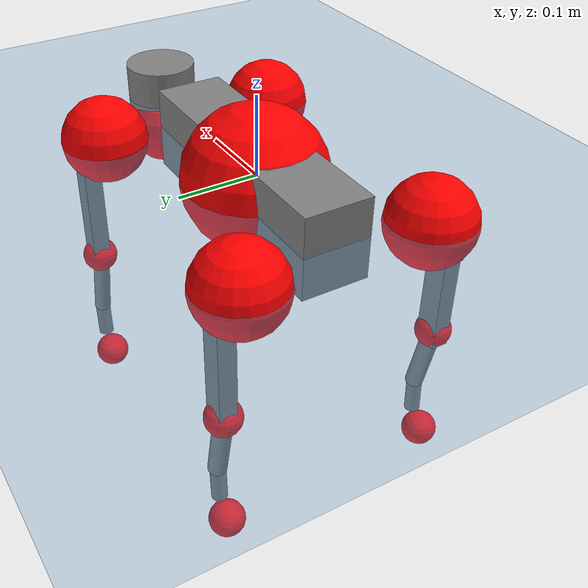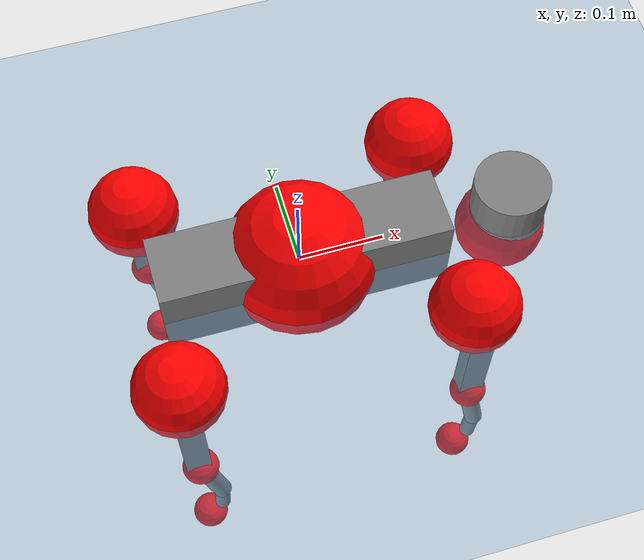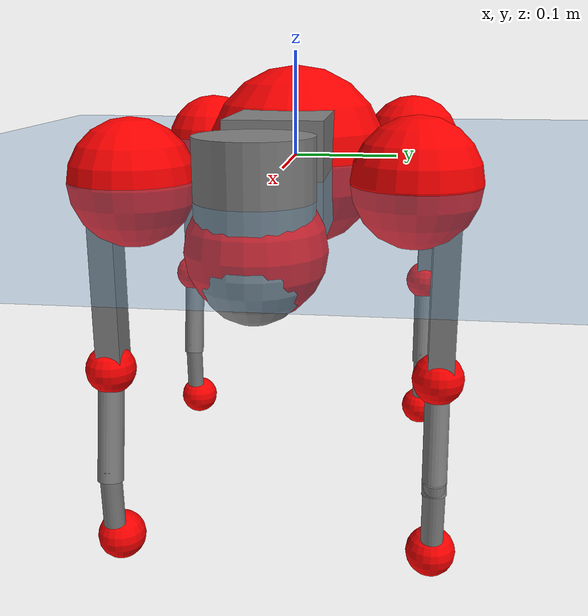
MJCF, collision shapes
<mujoco model="go2">
  <compiler angle="radian" assetdir="assets" balanceinertia="true" inertiafromgeom="false"/>

  <option timestep="0.005" density="1.2" viscosity="2e-05"/>

  <size nkey="1"/>

  <visual>
    <quality shadowsize="8192"/>
    <map shadowclip="0.5"/>
  </visual>

  <default>
    <default class="/">
      <geom contype="0" conaffinity="0" group="1" solref="-1000 -80"/>
      <site size="0.01 0.005 0.005" group="5"/>
      <general forcelimited="true" biastype="affine" gainprm="20" biasprm="0 -20 -0.5"/>
      <default class="go2">
        <joint armature="0.01" damping="0.01" frictionloss="0.2"/>
        <geom condim="1" margin="0.001"/>
        <default class="visual">
          <geom type="mesh" group="2"/>
        </default>
        <default class="collision">
          <geom group="3"/>
          <default class="foot">
            <geom size="0.022 0 0" condim="6" priority="1" friction="0.8 0.02 0.01" solimp="0.015 1 0.022"/>
          </default>
        </default>
        <default class="reward_collision_sphere">
          <geom group="5" rgba="1 0 0 1"/>
        </default>
      </default>
    </default>
  </default>

  <asset>
    <texture type="skybox" colorspace="auto" name="//unnamed_texture_0" builtin="gradient" rgb1="0.95 0.95 0.95" rgb2="0.95 0.95 0.95" width="100" height="600"/>
    <texture type="2d" colorspace="auto" name="texplane" builtin="checker" rgb1="0.345 0.575 0.748" rgb2="0.345 0.575 0.748" markrgb="1 1 1" width="512" height="512"/>
    <material name="MatPlane" class="/" texture="texplane" texuniform="true" texrepeat="2 2" specular="0.9"/>
    <material name="metal" class="/" rgba="0.9 0.95 0.95 1"/>
    <material name="black" class="/" rgba="0 0 0 1"/>
    <material name="white" class="/"/>
    <material name="gray" class="/" rgba="0.671705 0.692426 0.77427 1"/>
    <mesh name="base_0" class="/" file="base_0.obj"/>
    <mesh name="base_1" class="/" file="base_1.obj"/>
    <mesh name="base_2" class="/" file="base_2.obj"/>
    <mesh name="base_3" class="/" file="base_3.obj"/>
    <mesh name="base_4" class="/" file="base_4.obj"/>
    <mesh name="hip_0" class="/" file="hip_0.obj"/>
    <mesh name="hip_1" class="/" file="hip_1.obj"/>
    <mesh name="thigh_0" class="/" file="thigh_0.obj"/>
    <mesh name="thigh_1" class="/" file="thigh_1.obj"/>
    <mesh name="thigh_mirror_0" class="/" file="thigh_mirror_0.obj"/>
    <mesh name="thigh_mirror_1" class="/" file="thigh_mirror_1.obj"/>
    <mesh name="calf_0" class="/" file="calf_0.obj"/>
    <mesh name="calf_1" class="/" file="calf_1.obj"/>
    <mesh name="calf_mirror_0" class="/" file="calf_mirror_0.obj"/>
    <mesh name="calf_mirror_1" class="/" file="calf_mirror_1.obj"/>
    <mesh name="foot" class="/" file="foot.obj"/>
  </asset>

  <worldbody>
    <geom name="floor" class="/" size="100 100 0.125" type="plane" group="0" material="MatPlane"/>
    <light name="toplight_shadow" class="/" pos="0 0 5" dir="0.0990148 0.0990148 -0.990148" type="directional" ambient="0.04 0.04 0.04" diffuse="0.55 0.55 0.55" specular="0.12 0.12 0.12"/>
    <light name="toplight_fill" class="/" pos="0 0 5" dir="0.0990148 0.0990148 -0.990148" type="directional" castshadow="false" ambient="0.04 0.04 0.04" diffuse="0.3 0.3 0.3" specular="0.08 0.08 0.08"/>
    <body name="trunk" childclass="go2" pos="0.000389731 0.00103787 -0.00270559" quat="1 0.00015511 0.000179827 -0.000585087">
      <inertial pos="0.0178131 0.00279575 -0.00379254" quat="0.000114261 0.713215 -0.00232178 0.700941" mass="5.10224" diaginertia="0.0618598 0.10434 0.00779239"/>
      <joint name="//unnamed_joint_0" type="free" armature="0" damping="0" frictionloss="0"/>
      <geom name="//unnamed_geom_1" class="visual" material="black" mesh="base_0"/>
      <geom name="//unnamed_geom_2" class="visual" material="black" mesh="base_1"/>
      <geom name="//unnamed_geom_3" class="visual" material="black" mesh="base_2"/>
      <geom name="//unnamed_geom_4" class="visual" material="white" mesh="base_3"/>
      <geom name="//unnamed_geom_5" class="visual" material="gray" mesh="base_4"/>
      <geom name="trunk_1" class="collision" size="0.168331 0.0418366 0.0510094" type="box"/>
      <geom name="trunk_2" class="collision" size="0.0447451 0.0402706" pos="0.25391 0 0.00786926" type="cylinder"/>
      <geom name="trunk_3" class="collision" size="0.0420604" pos="0.261037 0 -0.0472156"/>
      <geom name="//unnamed_geom_9" class="reward_collision_sphere" size="0.0894902"/>
      <geom name="//unnamed_geom_10" class="reward_collision_sphere" size="0.0536941" pos="0.249456 0 -0.0354117"/>
      <site name="imu" pos="-0.0177644 0.0141416 0.040817" size="0.00894902"/>
      <camera name="track" pos="0 -2.01373 0" quat="0.707107 0.707107 0 0" mode="trackcom"/>
      <camera name="ego_camera" pos="0.277965 0 0.0354117" quat="-0.5 -0.5 0.5 0.5"/>
      <body name="FL_hip" pos="0.169933 0.0465081 0.00320361" quat="0.999999 0.000747402 -0.000809283 -0.000532766">
        <inertial pos="-0.00374791 -0.000390036 0.000226675" quat="0.494119 0.499376 0.508732 0.497657" mass="0.473562" diaginertia="0.000502523 0.000643865 0.000145284"/>
        <joint name="FL_hip_joint" pos="0 0 0" axis="1 -0.000529135 -0.00038084" range="-1.03502 1.06538" armature="0.00893496" damping="0.022725" frictionloss="0.182014"/>
        <geom name="//unnamed_geom_11" class="visual" material="metal" mesh="hip_0"/>
        <geom name="//unnamed_geom_12" class="visual" material="gray" mesh="hip_1"/>
        <geom name="//unnamed_geom_13" class="collision" size="0.0411655 0.017898" pos="0 0.0805493 0" quat="0.707107 0.707107 0 0" type="cylinder"/>
        <geom name="//unnamed_geom_14" class="reward_collision_sphere" size="0.0536941" pos="0 0.0704806 0"/>
        <body name="FL_thigh" pos="0.001666 0.0963564 0.00299789" quat="1 -0.000633131 -0.000120156 -0.000661023">
          <inertial pos="-0.00107238 -0.0250849 -0.0270917" quat="0.829524 0.0844722 -0.0203628 0.55167" mass="0.809596" diaginertia="0.00334415 0.00577638 0.000257093"/>
          <joint name="FL_thigh_joint" pos="0 0 0" axis="-0.000588673 0.99999 0.00449319" stiffness="0.00340118" range="-1.51386 3.50104" armature="0.00789275" damping="0.0123086" frictionloss="0.160136"/>
          <geom name="//unnamed_geom_15" class="visual" material="metal" mesh="thigh_0"/>
          <geom name="//unnamed_geom_16" class="visual" material="gray" mesh="thigh_1"/>
          <geom name="//unnamed_geom_17" class="collision" size="0.095307 0.0109625 0.0152133" pos="0 0 -0.0838076" quat="0.707107 0 0.707107 0" type="box"/>
          <body name="FL_calf" pos="-0.000245149 -0.00144364 -0.169472" quat="0.999999 0.00141592 -0.000122904 -0.000125512">
            <inertial pos="0.00349813 -0.00101789 -0.10809" quat="0.714553 0.0118625 -0.00364033 0.699471" mass="0.172652" diaginertia="0.000808326 0.00157026 1.63988e-05"/>
            <joint name="FL_calf_joint" pos="0 0 0" axis="0.0209151 0.999746 0.00839334" stiffness="0.0134359" range="-2.74949 -0.856589" armature="0.0100677" damping="0" frictionloss="0.204269"/>
            <geom name="//unnamed_geom_18" class="visual" material="gray" mesh="calf_0"/>
            <geom name="//unnamed_geom_19" class="visual" material="black" mesh="calf_1"/>
            <geom name="FL_calf0" class="collision" size="0.0107388 0.0536941" pos="0.0071273 0 -0.0472156" quat="0.994493 0 -0.104807 0" type="cylinder"/>
            <geom name="//unnamed_geom_21" class="collision" size="0.00984392 0.0290843" pos="0.0178183 0 -0.116465" quat="0.999688 0 0.0249974 0" type="cylinder"/>
            <geom name="//unnamed_geom_22" class="visual" pos="0 0 -0.167615" quat="1 0 0 0" material="black" mesh="foot"/>
            <geom name="FL_foot" class="foot" size="0.016606" pos="-0.00178183 0 -0.167615"/>
            <geom name="//unnamed_geom_24" class="reward_collision_sphere" size="0.0223725"/>
            <geom name="//unnamed_geom_25" class="reward_collision_sphere" size="0.0223725" pos="-0.00178183 0 -0.167615"/>
            <site name="FL_foot" class="foot" pos="-0.00178183 0 -0.167615" size="0.00894902"/>
          </body>
        </body>
      </body>
      <body name="FR_hip" pos="0.172748 -0.04549 -0.000339452" quat="0.999999 -0.000690721 0.000574073 -0.000542259">
        <inertial pos="-0.00179006 -0.00363694 -0.000419547" quat="0.49198 0.50728 0.506569 0.493974" mass="0.484066" diaginertia="0.000463789 0.000595447 0.000134862"/>
        <joint name="FR_hip_joint" pos="0 0 0" axis="0.99988 -0.0107143 0.0111961" range="-1.0097 1.04538" armature="0.00958884" damping="0.00608641" frictionloss="0.161508"/>
        <geom name="//unnamed_geom_26" class="visual" pos="0 1.91602e-09 8.21822e-08" quat="4.63268e-05 1 0 0" material="metal" mesh="hip_0"/>
        <geom name="//unnamed_geom_27" class="visual" pos="0 3.1061e-09 -2.03268e-07" quat="4.63268e-05 1 0 0" material="gray" mesh="hip_1"/>
        <geom name="//unnamed_geom_28" class="collision" size="0.0411655 0.017898" pos="0 -0.0805493 0" quat="0.707107 0.707107 0 0" type="cylinder"/>
        <geom name="//unnamed_geom_29" class="reward_collision_sphere" size="0.0536941" pos="0 -0.0704806 0"/>
        <body name="FR_thigh" pos="0.000811242 -0.0965769 0.00334964" quat="1 -0.000560787 0.000311661 -6.33281e-05">
          <inertial pos="-0.000245154 0.0201312 -0.0247284" quat="0.548221 -0.0333175 0.0843139 0.831405" mass="0.825398" diaginertia="0.00326381 0.00570118 0.000262734"/>
          <joint name="FR_thigh_joint" pos="0 0 0" axis="-0.000985723 -1 -0.000133183" range="-3.48155 1.6132" armature="0.00905865" damping="0.0045321" frictionloss="0.202591"/>
          <geom name="//unnamed_geom_30" class="visual" material="metal" mesh="thigh_mirror_0"/>
          <geom name="//unnamed_geom_31" class="visual" material="gray" mesh="thigh_mirror_1"/>
          <geom name="//unnamed_geom_32" class="collision" size="0.095307 0.0109625 0.0152133" pos="0 0 -0.0838076" quat="0.707107 0 0.707107 0" type="box"/>
          <body name="FR_calf" pos="0.000389463 -0.0023825 -0.169547" quat="1 -0.000118408 0.000112099 -1.85966e-05">
            <inertial pos="0.00516082 -0.000240983 -0.111588" quat="0.704791 -0.00311251 0.00920036 0.709348" mass="0.174512" diaginertia="0.000836934 0.00151312 1.54815e-05"/>
            <joint name="FR_calf_joint" pos="0 0 0" axis="0.00404792 -0.99998 -0.00491602" range="0.816799 2.77317" armature="0.00809613" damping="0.0218796" frictionloss="0.157264"/>
            <geom name="//unnamed_geom_33" class="visual" material="gray" mesh="calf_mirror_0"/>
            <geom name="//unnamed_geom_34" class="visual" material="black" mesh="calf_mirror_1"/>
            <geom name="FR_calf0" class="collision" size="0.0116337 0.0536941" pos="0.00890913 0 -0.0472156" quat="0.995004 0 -0.0998334 0" type="cylinder"/>
            <geom name="//unnamed_geom_36" class="collision" size="0.00984392 0.0290843" pos="0.0178183 0 -0.116465" quat="0.999688 0 0.0249974 0" type="cylinder"/>
            <geom name="//unnamed_geom_37" class="visual" pos="0 0 -0.167615" quat="1 0 0 0" material="black" mesh="foot"/>
            <geom name="FR_foot" class="foot" size="0.019821" pos="-0.00178183 0 -0.167615"/>
            <geom name="//unnamed_geom_39" class="reward_collision_sphere" size="0.0223725"/>
            <geom name="//unnamed_geom_40" class="reward_collision_sphere" size="0.0223725" pos="-0.00178183 0 -0.167615"/>
            <site name="FR_foot" class="foot" pos="-0.00178183 0 -0.167615" size="0.00894902"/>
          </body>
        </body>
      </body>
      <body name="RL_hip" pos="-0.170637 0.045449 -0.0026759" quat="1 5.78282e-06 0.000160833 -0.000553361">
        <inertial pos="0.00684888 0.00308604 -0.00247403" quat="0.505414 0.498858 0.496597 0.499087" mass="0.496354" diaginertia="0.000493859 0.000625417 0.000148564"/>
        <joint name="RL_hip_joint" pos="0 0 0" axis="-0.99983 -0.0136559 0.0123531" stiffness="0.0118583" range="-1.03714 0.988578" armature="0.00808633" damping="0" frictionloss="0.193557"/>
        <geom name="//unnamed_geom_41" class="visual" pos="-9.05888e-10 0 -1.77575e-07" quat="4.63268e-05 0 1 0" material="metal" mesh="hip_0"/>
        <geom name="//unnamed_geom_42" class="visual" pos="-1.46855e-09 0 -1.57484e-07" quat="4.63268e-05 0 1 0" material="gray" mesh="hip_1"/>
        <geom name="//unnamed_geom_43" class="collision" size="0.0411655 0.017898" pos="0 0.0805493 0" quat="0.707107 0.707107 0 0" type="cylinder"/>
        <geom name="//unnamed_geom_44" class="reward_collision_sphere" size="0.0536941" pos="0 0.0704806 0"/>
        <body name="RL_thigh" pos="0.000609339 0.0939148 0.00113503" quat="1 0.0001998 -0.000170676 4.40448e-05">
          <inertial pos="-0.00347358 -0.0228203 -0.0255939" quat="0.827692 0.0871718 -0.0300707 0.553554" mass="0.849136" diaginertia="0.00335704 0.00614297 0.000278926"/>
          <joint name="RL_thigh_joint" pos="0 0 0" axis="-0.0132068 0.999881 -0.00793058" stiffness="0.00965374" range="-0.540671 4.53057" armature="0.0099767" damping="0" frictionloss="0.179345"/>
          <geom name="//unnamed_geom_45" class="visual" material="metal" mesh="thigh_0"/>
          <geom name="//unnamed_geom_46" class="visual" material="gray" mesh="thigh_1"/>
          <geom name="//unnamed_geom_47" class="collision" size="0.095307 0.0109625 0.0152133" pos="0 0 -0.0838076" quat="0.707107 0 0.707107 0" type="box"/>
          <body name="RL_calf" pos="0.000301871 -0.00150796 -0.168766" quat="1 0.000373906 7.7454e-05 0.000201144">
            <inertial pos="0.00343735 0.000135853 -0.112206" quat="0.719271 -0.00446238 -0.00760785 0.694673" mass="0.177525" diaginertia="0.000826515 0.00153192 1.63116e-05"/>
            <joint name="RL_calf_joint" pos="0 0 0" axis="-0.0110957 0.999928 0.0045833" stiffness="0.00127567" range="-2.71876 -0.783728" armature="0.0101047" damping="0" frictionloss="0.186507"/>
            <geom name="//unnamed_geom_48" class="visual" material="gray" mesh="calf_0"/>
            <geom name="//unnamed_geom_49" class="visual" material="black" mesh="calf_1"/>
            <geom name="RL_calf0" class="collision" size="0.0116337 0.0536941" pos="0.00890913 0 -0.0472156" quat="0.995004 0 -0.0998334 0" type="cylinder"/>
            <geom name="//unnamed_geom_51" class="collision" size="0.00984392 0.0290843" pos="0.0178183 0 -0.116465" quat="0.999688 0 0.0249974 0" type="cylinder"/>
            <geom name="//unnamed_geom_52" class="visual" pos="0 0 -0.167615" quat="1 0 0 0" material="black" mesh="foot"/>
            <geom name="RL_foot" class="foot" size="0.0162128" pos="-0.00178183 0 -0.167615"/>
            <geom name="//unnamed_geom_54" class="reward_collision_sphere" size="0.0223725"/>
            <geom name="//unnamed_geom_55" class="reward_collision_sphere" size="0.0223725" pos="-0.00178183 0 -0.167615"/>
            <site name="RL_foot" class="foot" pos="-0.00178183 0 -0.167615" size="0.00894902"/>
          </body>
        </body>
      </body>
      <body name="RR_hip" pos="-0.169977 -0.0501954 -0.00379971" quat="1 0.000119763 -0.000208001 0.000119835">
        <inertial pos="0.00564042 0.000715721 -0.00118943" quat="0.508042 0.487321 0.500163 0.504231" mass="0.486453" diaginertia="0.000499705 0.000625168 0.000147252"/>
        <joint name="RR_hip_joint" pos="0 0 0" axis="-0.999995 -0.000798299 -0.00318382" stiffness="0.00996793" range="-1.00017 1.046" armature="0.00764625" damping="0.0013594" frictionloss="0.180785"/>
        <geom name="//unnamed_geom_56" class="visual" pos="9.09902e-10 1.91602e-09 -2.59757e-07" quat="2.14617e-09 4.63268e-05 4.63268e-05 -1" material="metal" mesh="hip_0"/>
        <geom name="//unnamed_geom_57" class="visual" pos="1.45862e-09 3.1061e-09 4.57845e-08" quat="2.14617e-09 4.63268e-05 4.63268e-05 -1" material="gray" mesh="hip_1"/>
        <geom name="//unnamed_geom_58" class="collision" size="0.0411655 0.017898" pos="0 -0.0805493 0" quat="0.707107 0.707107 0 0" type="cylinder"/>
        <geom name="//unnamed_geom_59" class="reward_collision_sphere" size="0.0536941" pos="0 -0.0704806 0"/>
        <body name="RR_thigh" pos="-0.00031679 -0.0976199 9.61178e-05" quat="1 1.51832e-05 -3.25777e-05 -1.74884e-05">
          <inertial pos="-0.00276047 0.0229539 -0.0256858" quat="0.551252 -0.0199638 0.0842515 0.829834" mass="0.807588" diaginertia="0.00334898 0.00626684 0.000267354"/>
          <joint name="RR_thigh_joint" pos="0 0 0" axis="0.000581558 -0.999998 -0.00213733" stiffness="0.0106544" range="-4.53907 0.560914" armature="0.00936258" damping="0.0157666" frictionloss="0.181492"/>
          <geom name="//unnamed_geom_60" class="visual" material="metal" mesh="thigh_mirror_0"/>
          <geom name="//unnamed_geom_61" class="visual" material="gray" mesh="thigh_mirror_1"/>
          <geom name="//unnamed_geom_62" class="collision" size="0.095307 0.0109625 0.0152133" pos="0 0 -0.0838076" quat="0.707107 0 0.707107 0" type="box"/>
          <body name="RR_calf" pos="0.00216601 -0.00253724 -0.165447" quat="1 0.000410888 0.000261158 0.000414127">
            <inertial pos="0.00287024 0.000140247 -0.111457" quat="0.712863 -0.000569489 0.00448976 0.701289" mass="0.174572" diaginertia="0.000856957 0.00149954 1.64065e-05"/>
            <joint name="RR_calf_joint" pos="0 0 0" axis="0.00891535 -0.999938 -0.00671974" stiffness="0.00085306" range="0.804226 2.71505" armature="0.00830499" damping="0.0181218" frictionloss="0.166601"/>
            <geom name="//unnamed_geom_63" class="visual" material="gray" mesh="calf_mirror_0"/>
            <geom name="//unnamed_geom_64" class="visual" material="black" mesh="calf_mirror_1"/>
            <geom name="RR_calf0" class="collision" size="0.0116337 0.0536941" pos="0.00890913 0 -0.0472156" quat="0.995004 0 -0.0998334 0" type="cylinder"/>
            <geom name="//unnamed_geom_66" class="collision" size="0.00984392 0.0290843" pos="0.0178183 0 -0.116465" quat="0.999688 0 0.0249974 0" type="cylinder"/>
            <geom name="//unnamed_geom_67" class="visual" pos="0 0 -0.167615" quat="1 0 0 0" material="black" mesh="foot"/>
            <geom name="RR_foot" class="foot" size="0.0188445" pos="-0.00178183 0 -0.167615"/>
            <geom name="//unnamed_geom_69" class="reward_collision_sphere" size="0.0223725"/>
            <geom name="//unnamed_geom_70" class="reward_collision_sphere" size="0.0223725" pos="-0.00178183 0 -0.167615"/>
            <site name="RR_foot" class="foot" pos="-0.00178183 0 -0.167615" size="0.00894902"/>
          </body>
        </body>
      </body>
    </body>
  </worldbody>

  <contact>
    <pair class="/" geom1="floor" geom2="FL_foot" name="//unnamed_contact_0"/>
    <pair class="/" geom1="floor" geom2="FR_foot" name="//unnamed_contact_1"/>
    <pair class="/" geom1="floor" geom2="RL_foot" name="//unnamed_contact_2"/>
    <pair class="/" geom1="floor" geom2="RR_foot" name="//unnamed_contact_3"/>
  </contact>

  <actuator>
    <general name="FL_hip" class="/" joint="FL_hip_joint" forcerange="-21.3767 21.3767" gainprm="19.2447" biasprm="0 -19.2447 -0.420484"/>
    <general name="FL_thigh" class="/" joint="FL_thigh_joint" forcerange="-19.0392 19.0392" gainprm="19.2447" biasprm="0 -19.2447 -0.420484"/>
    <general name="FL_calf" class="/" joint="FL_calf_joint" forcerange="-41.1441 41.1441" gainprm="19.2447" biasprm="0 -19.2447 -0.420484"/>
    <general name="FR_hip" class="/" joint="FR_hip_joint" forcerange="-21.7135 21.7135" gainprm="19.2447" biasprm="0 -19.2447 -0.420484"/>
    <general name="FR_thigh" class="/" joint="FR_thigh_joint" forcerange="-23.3726 23.3726" gainprm="19.2447" biasprm="0 -19.2447 -0.420484"/>
    <general name="FR_calf" class="/" joint="FR_calf_joint" forcerange="-40.8929 40.8929" gainprm="19.2447" biasprm="0 -19.2447 -0.420484"/>
    <general name="RL_hip" class="/" joint="RL_hip_joint" forcerange="-21.9084 21.9084" gainprm="19.2447" biasprm="0 -19.2447 -0.420484"/>
    <general name="RL_thigh" class="/" joint="RL_thigh_joint" forcerange="-19.1165 19.1165" gainprm="19.2447" biasprm="0 -19.2447 -0.420484"/>
    <general name="RL_calf" class="/" joint="RL_calf_joint" forcerange="-38.8808 38.8808" gainprm="19.2447" biasprm="0 -19.2447 -0.420484"/>
    <general name="RR_hip" class="/" joint="RR_hip_joint" forcerange="-19.0942 19.0942" gainprm="19.2447" biasprm="0 -19.2447 -0.420484"/>
    <general name="RR_thigh" class="/" joint="RR_thigh_joint" forcerange="-22.2165 22.2165" gainprm="19.2447" biasprm="0 -19.2447 -0.420484"/>
    <general name="RR_calf" class="/" joint="RR_calf_joint" forcerange="-41.1196 41.1196" gainprm="19.2447" biasprm="0 -19.2447 -0.420484"/>
  </actuator>

  <sensor>
    <gyro site="imu" name="imu_angular_velocity"/>
    <velocimeter site="imu" name="imu_linear_velocity"/>
    <framelinvel objtype="site" objname="FL_foot" name="FL_foot_global_linear_velocity"/>
    <framelinvel objtype="site" objname="FR_foot" name="FR_foot_global_linear_velocity"/>
    <framelinvel objtype="site" objname="RL_foot" name="RL_foot_global_linear_velocity"/>
    <framelinvel objtype="site" objname="RR_foot" name="RR_foot_global_linear_velocity"/>
  </sensor>

  <keyframe>
    <key name="home" qpos="0 0 0.325 1 0 0 0 0.1 0.8 -1.5 -0.1 -0.8 1.5 -0.1 0.8 -1.5 0.1 -0.8 1.5"/>
  </keyframe>
</mujoco>
